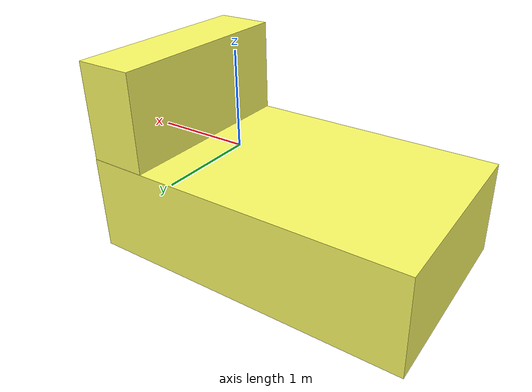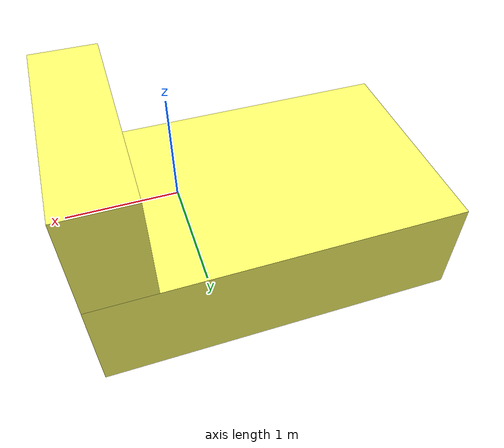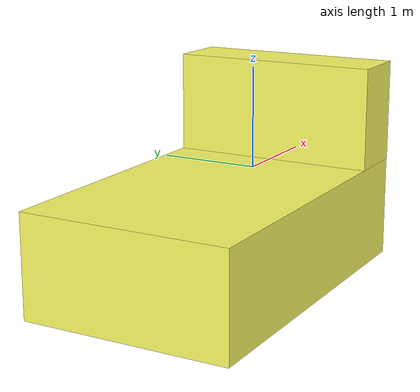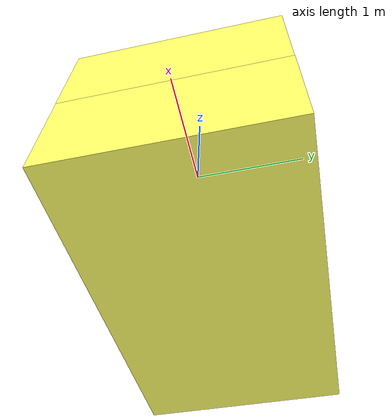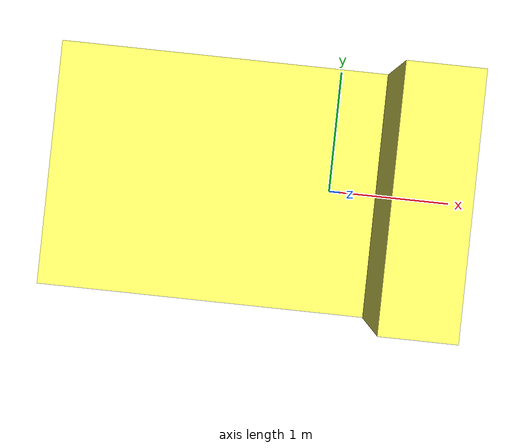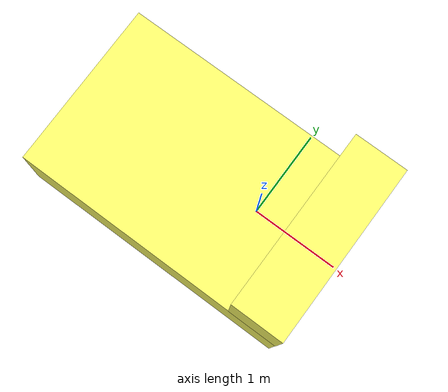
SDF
<?xml version='1.0'?>
<sdf version='1.6'>
  <model name='bed'>
    <link name='link_0'>
      <inertial>
        <mass>6.82794</mass>
        <inertia>
          <ixx>2.95336</ixx>
          <ixy>0</ixy>
          <ixz>0</ixz>
          <iyy>6.89905</iyy>
          <iyz>0</iyz>
          <izz>8.71442</izz>
        </inertia>
        <pose frame=''>0 0 0 0 -0 0</pose>
      </inertial>
      <pose frame=''>-0.686745 0.00181 -0.5 0 -0 0</pose>
      <gravity>1</gravity>
      <self_collide>0</self_collide>
      <kinematic>0</kinematic>
      <enable_wind>0</enable_wind>
      <visual name='visual'>
        <pose frame=''>0 0 0 0 -0 0</pose>
        <geometry>
          <box>
            <size>3.35 2.05 1</size>
          </box>
        </geometry>
        <material>
          <lighting>1</lighting>
          <script>
            <uri>file://media/materials/scripts/gazebo.material</uri>
            <name>Gazebo/Grey</name>
          </script>
          <shader type='vertex'>
            <normal_map>__default__</normal_map>
          </shader>
          <ambient>1 1 0.4 1</ambient>
          <diffuse>0.7 0.7 0.7 1</diffuse>
          <specular>0.01 0.01 0.01 1</specular>
          <emissive>0 0 0 1</emissive>
        </material>
        <transparency>0</transparency>
        <cast_shadows>1</cast_shadows>
      </visual>
      <collision name='collision'>
        <laser_retro>0</laser_retro>
        <max_contacts>10</max_contacts>
        <pose frame=''>0 0 0 0 -0 0</pose>
        <geometry>
          <box>
            <size>3.35 2.05 1</size>
          </box>
        </geometry>
        <surface>
          <friction>
            <ode>
              <mu>1</mu>
              <mu2>1</mu2>
              <fdir1>0 0 0</fdir1>
              <slip1>0</slip1>
              <slip2>0</slip2>
            </ode>
            <torsional>
              <coefficient>1</coefficient>
              <patch_radius>0</patch_radius>
              <surface_radius>0</surface_radius>
              <use_patch_radius>1</use_patch_radius>
              <ode>
                <slip>0</slip>
              </ode>
            </torsional>
          </friction>
          <bounce>
            <restitution_coefficient>0</restitution_coefficient>
            <threshold>1e+06</threshold>
          </bounce>
          <contact>
            <collide_without_contact>0</collide_without_contact>
            <collide_without_contact_bitmask>1</collide_without_contact_bitmask>
            <collide_bitmask>1</collide_bitmask>
            <ode>
              <soft_cfm>0</soft_cfm>
              <soft_erp>0.2</soft_erp>
              <kp>1e+13</kp>
              <kd>1</kd>
              <max_vel>0.01</max_vel>
              <min_depth>0</min_depth>
            </ode>
            <bullet>
              <split_impulse>1</split_impulse>
              <split_impulse_penetration_threshold>-0.01</split_impulse_penetration_threshold>
              <soft_cfm>0</soft_cfm>
              <soft_erp>0.2</soft_erp>
              <kp>1e+13</kp>
              <kd>1</kd>
            </bullet>
          </contact>
        </surface>
      </collision>
    </link>
    <link name='link_1'>
      <inertial>
        <mass>1.46441</mass>
        <inertia>
          <ixx>0.634881</ixx>
          <ixy>0</ixy>
          <ixz>0</ixz>
          <iyy>0.166371</iyy>
          <iyz>0</iyz>
          <izz>0.557184</izz>
        </inertia>
        <pose frame=''>0 0 0 0 -0 0</pose>
      </inertial>
      <pose frame=''>0.686742 -0.00181 0.5 0 -0 0</pose>
      <gravity>1</gravity>
      <self_collide>0</self_collide>
      <kinematic>0</kinematic>
      <enable_wind>0</enable_wind>
      <visual name='visual'>
        <pose frame=''>0 0 0 0 -0 0</pose>
        <geometry>
          <box>
            <size>0.602759 2.05 1</size>
          </box>
        </geometry>
        <material>
          <lighting>1</lighting>
          <script>
            <uri>file://media/materials/scripts/gazebo.material</uri>
            <name>Gazebo/Grey</name>
          </script>
          <shader type='vertex'>
            <normal_map>__default__</normal_map>
          </shader>
          <ambient>1 1 0.4 1</ambient>
          <diffuse>0.7 0.7 0.7 1</diffuse>
          <specular>0.01 0.01 0.01 1</specular>
          <emissive>0 0 0 1</emissive>
        </material>
        <transparency>0</transparency>
        <cast_shadows>1</cast_shadows>
      </visual>
      <collision name='collision'>
        <laser_retro>0</laser_retro>
        <max_contacts>10</max_contacts>
        <pose frame=''>0 0 0 0 -0 0</pose>
        <geometry>
          <box>
            <size>0.602759 2.05 1</size>
          </box>
        </geometry>
        <surface>
          <friction>
            <ode>
              <mu>1</mu>
              <mu2>1</mu2>
              <fdir1>0 0 0</fdir1>
              <slip1>0</slip1>
              <slip2>0</slip2>
            </ode>
            <torsional>
              <coefficient>1</coefficient>
              <patch_radius>0</patch_radius>
              <surface_radius>0</surface_radius>
              <use_patch_radius>1</use_patch_radius>
              <ode>
                <slip>0</slip>
              </ode>
            </torsional>
          </friction>
          <bounce>
            <restitution_coefficient>0</restitution_coefficient>
            <threshold>1e+06</threshold>
          </bounce>
          <contact>
            <collide_without_contact>0</collide_without_contact>
            <collide_without_contact_bitmask>1</collide_without_contact_bitmask>
            <collide_bitmask>1</collide_bitmask>
            <ode>
              <soft_cfm>0</soft_cfm>
              <soft_erp>0.2</soft_erp>
              <kp>1e+13</kp>
              <kd>1</kd>
              <max_vel>0.01</max_vel>
              <min_depth>0</min_depth>
            </ode>
            <bullet>
              <split_impulse>1</split_impulse>
              <split_impulse_penetration_threshold>-0.01</split_impulse_penetration_threshold>
              <soft_cfm>0</soft_cfm>
              <soft_erp>0.2</soft_erp>
              <kp>1e+13</kp>
              <kd>1</kd>
            </bullet>
          </contact>
        </surface>
      </collision>
    </link>
    <joint name='link_0_JOINT_0' type='fixed'>
      <parent>link_0</parent>
      <child>link_1</child>
      <pose frame=''>0 0 0 0 -0 0</pose>
      <physics>
        <ode>
          <limit>
            <cfm>0</cfm>
            <erp>0.2</erp>
          </limit>
          <suspension>
            <cfm>0</cfm>
            <erp>0.2</erp>
          </suspension>
        </ode>
      </physics>
    </joint>
    <static>0</static>
    <allow_auto_disable>1</allow_auto_disable>
  </model>
</sdf>
